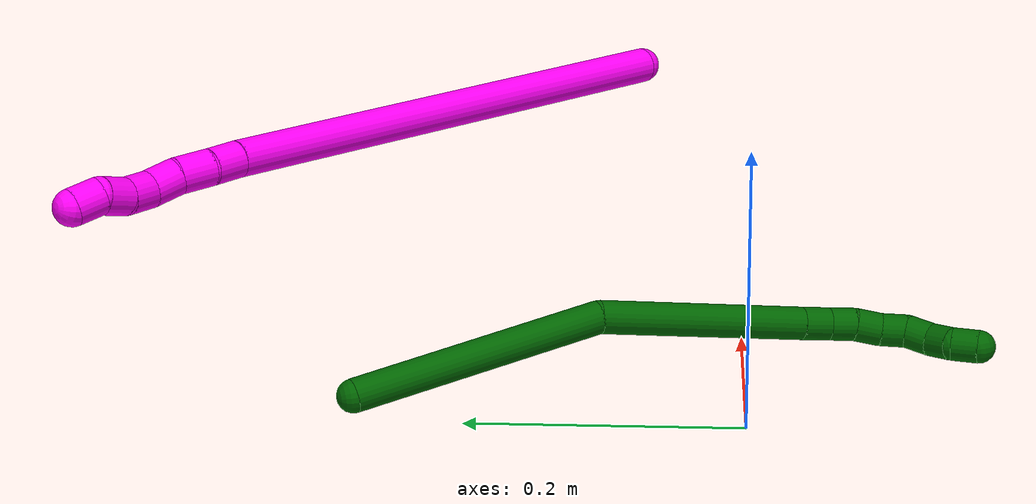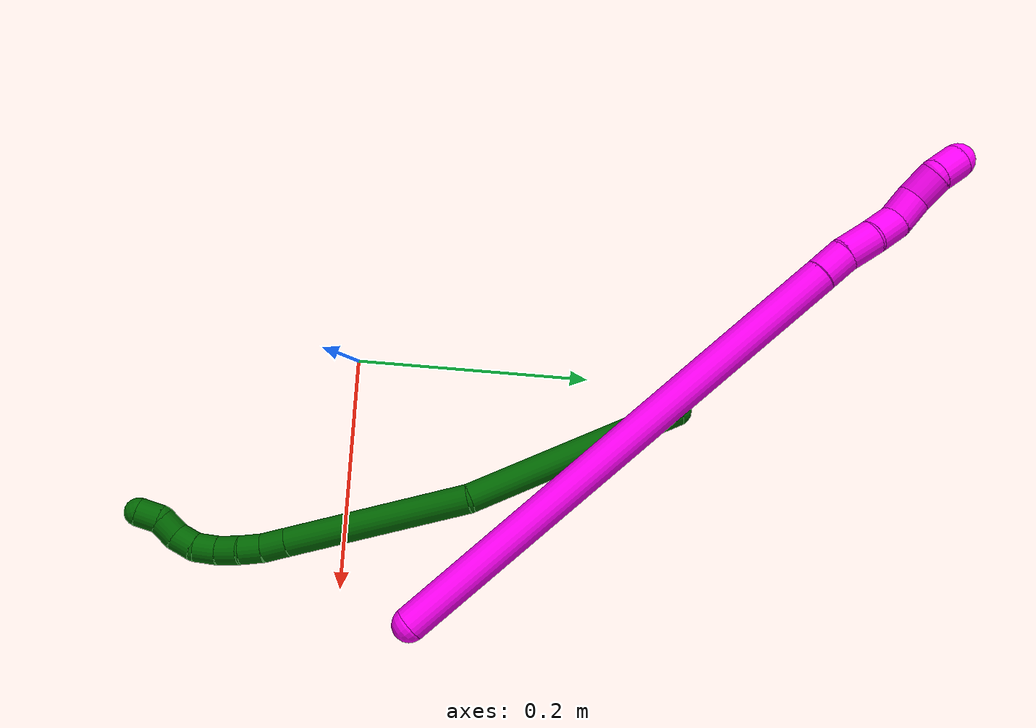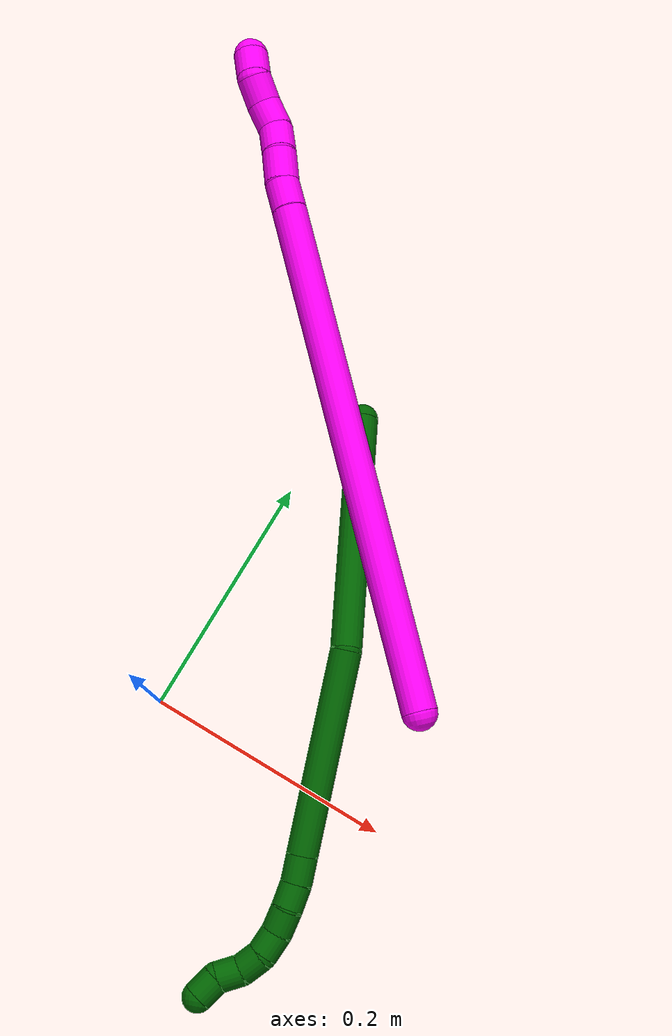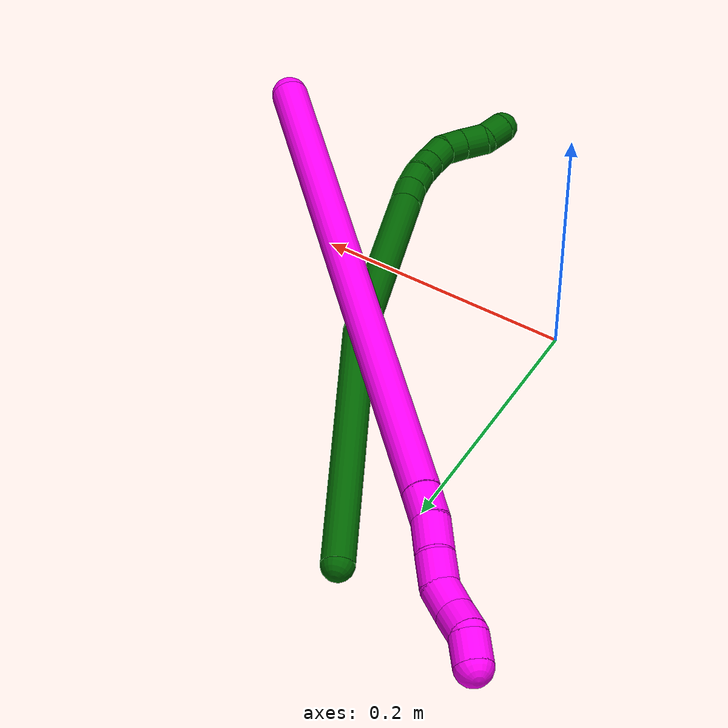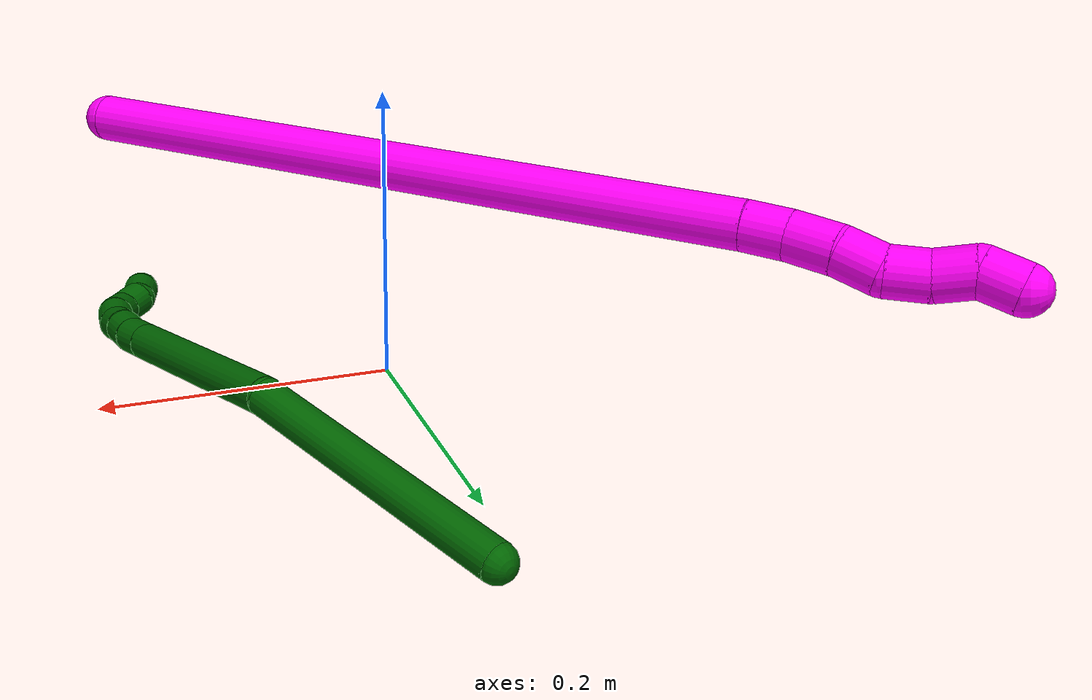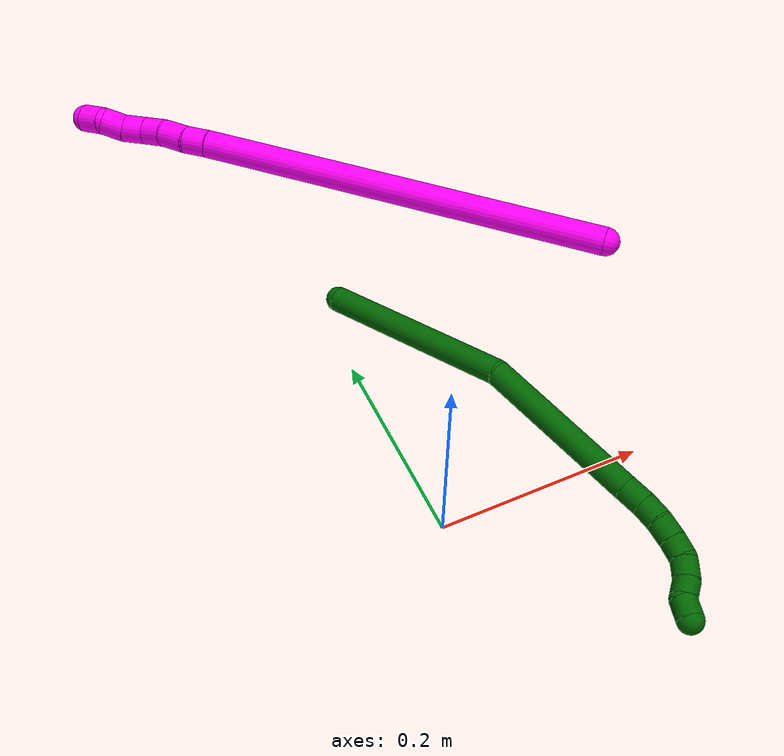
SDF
<sdf version="1.7">
 <world name="default">
  <model name="6">
   <static>0</static>
   <link name="6">
    <collision name="collision-cylinder-e_1_1_4">
     <pose>-0.010167 0.011104 -0.096827 -3.02741 -0.103946 1.47682</pose>
     <geometry><cylinder><radius>0.0125</radius><length>0.19598</length></cylinder></geometry>
     <surface>
      <friction><ode><mu>1.16</mu><mu2>1.16</mu2><slip1>0</slip1><slip2>0</slip2></ode></friction>
      <contact><ode><kp>1e+06</kp><kd>1</kd><max_vel>0</max_vel><min_depth>0.001</min_depth></ode></contact>
     </surface>
    </collision>
    <visual name="visual-cylinder-e_1_1_4">
     <pose>-0.010167 0.011104 -0.096827 -3.02741 -0.103946 1.47682</pose>
     <geometry><cylinder><radius>0.0125</radius><length>0.19598</length></cylinder></geometry>
     <material><ambient>0 0.392157 0.003922 1</ambient></material>
    </visual>
    <collision name="collision-cylinder-e_2_4_5">
     <pose>-0.021925 0.006219 -0.272563 2.94168 -0.019751 -0.196303</pose>
     <geometry><cylinder><radius>0.0125</radius><length>0.161059</length></cylinder></geometry>
     <surface>
      <friction><ode><mu>1.16</mu><mu2>1.16</mu2><slip1>0</slip1><slip2>0</slip2></ode></friction>
      <contact><ode><kp>1e+06</kp><kd>1</kd><max_vel>0</max_vel><min_depth>0.001</min_depth></ode></contact>
     </surface>
    </collision>
    <visual name="visual-cylinder-e_2_4_5">
     <pose>-0.021925 0.006219 -0.272563 2.94168 -0.019751 -0.196303</pose>
     <geometry><cylinder><radius>0.0125</radius><length>0.161059</length></cylinder></geometry>
     <material><ambient>0 0.392157 0.003922 1</ambient></material>
    </visual>
    <collision name="collision-cylinder-e_3_5_6">
     <pose>-0.023767 -0.011882 -0.362399 2.95065 -0.022615 -0.23508</pose>
     <geometry><cylinder><radius>0.0125</radius><length>0.022261</length></cylinder></geometry>
     <surface>
      <friction><ode><mu>1.16</mu><mu2>1.16</mu2><slip1>0</slip1><slip2>0</slip2></ode></friction>
      <contact><ode><kp>1e+06</kp><kd>1</kd><max_vel>0</max_vel><min_depth>0.001</min_depth></ode></contact>
     </surface>
    </collision>
    <visual name="visual-cylinder-e_3_5_6">
     <pose>-0.023767 -0.011882 -0.362399 2.95065 -0.022615 -0.23508</pose>
     <geometry><cylinder><radius>0.0125</radius><length>0.022261</length></cylinder></geometry>
     <material><ambient>0 0.392157 0.003922 1</ambient></material>
    </visual>
    <collision name="collision-cylinder-e_4_6_7">
     <pose>-0.022703 -0.015654 -0.383102 2.97341 0.131893 1.32919</pose>
     <geometry><cylinder><radius>0.0125</radius><length>0.02001</length></cylinder></geometry>
     <surface>
      <friction><ode><mu>1.16</mu><mu2>1.16</mu2><slip1>0</slip1><slip2>0</slip2></ode></friction>
      <contact><ode><kp>1e+06</kp><kd>1</kd><max_vel>0</max_vel><min_depth>0.001</min_depth></ode></contact>
     </surface>
    </collision>
    <visual name="visual-cylinder-e_4_6_7">
     <pose>-0.022703 -0.015654 -0.383102 2.97341 0.131893 1.32919</pose>
     <geometry><cylinder><radius>0.0125</radius><length>0.02001</length></cylinder></geometry>
     <material><ambient>0 0.392157 0.003922 1</ambient></material>
    </visual>
    <collision name="collision-cylinder-e_5_7_8">
     <pose>-0.01986 -0.0208 -0.402473 2.79297 0.148587 0.799787</pose>
     <geometry><cylinder><radius>0.0125</radius><length>0.020641</length></cylinder></geometry>
     <surface>
      <friction><ode><mu>1.16</mu><mu2>1.16</mu2><slip1>0</slip1><slip2>0</slip2></ode></friction>
      <contact><ode><kp>1e+06</kp><kd>1</kd><max_vel>0</max_vel><min_depth>0.001</min_depth></ode></contact>
     </surface>
    </collision>
    <visual name="visual-cylinder-e_5_7_8">
     <pose>-0.01986 -0.0208 -0.402473 2.79297 0.148587 0.799787</pose>
     <geometry><cylinder><radius>0.0125</radius><length>0.020641</length></cylinder></geometry>
     <material><ambient>0 0.392157 0.003922 1</ambient></material>
    </visual>
    <collision name="collision-cylinder-e_6_8_9">
     <pose>-0.014685 -0.026009 -0.421232 2.95592 0.372737 2.22429</pose>
     <geometry><cylinder><radius>0.0125</radius><length>0.020028</length></cylinder></geometry>
     <surface>
      <friction><ode><mu>1.16</mu><mu2>1.16</mu2><slip1>0</slip1><slip2>0</slip2></ode></friction>
      <contact><ode><kp>1e+06</kp><kd>1</kd><max_vel>0</max_vel><min_depth>0.001</min_depth></ode></contact>
     </surface>
    </collision>
    <visual name="visual-cylinder-e_6_8_9">
     <pose>-0.014685 -0.026009 -0.421232 2.95592 0.372737 2.22429</pose>
     <geometry><cylinder><radius>0.0125</radius><length>0.020028</length></cylinder></geometry>
     <material><ambient>0 0.392157 0.003922 1</ambient></material>
    </visual>
    <collision name="collision-cylinder-e_7_9_10">
     <pose>-0.005051 -0.031534 -0.437448 2.64688 0.641847 1.84226</pose>
     <geometry><cylinder><radius>0.0125</radius><length>0.020002</length></cylinder></geometry>
     <surface>
      <friction><ode><mu>1.16</mu><mu2>1.16</mu2><slip1>0</slip1><slip2>0</slip2></ode></friction>
      <contact><ode><kp>1e+06</kp><kd>1</kd><max_vel>0</max_vel><min_depth>0.001</min_depth></ode></contact>
     </surface>
    </collision>
    <visual name="visual-cylinder-e_7_9_10">
     <pose>-0.005051 -0.031534 -0.437448 2.64688 0.641847 1.84226</pose>
     <geometry><cylinder><radius>0.0125</radius><length>0.020002</length></cylinder></geometry>
     <material><ambient>0 0.392157 0.003922 1</ambient></material>
    </visual>
    <collision name="collision-cylinder-e_8_10_11">
     <pose>0.009666 -0.036766 -0.449168 2.84472 1.06081 2.64227</pose>
     <geometry><cylinder><radius>0.0125</radius><length>0.020005</length></cylinder></geometry>
     <surface>
      <friction><ode><mu>1.16</mu><mu2>1.16</mu2><slip1>0</slip1><slip2>0</slip2></ode></friction>
      <contact><ode><kp>1e+06</kp><kd>1</kd><max_vel>0</max_vel><min_depth>0.001</min_depth></ode></contact>
     </surface>
    </collision>
    <visual name="visual-cylinder-e_8_10_11">
     <pose>0.009666 -0.036766 -0.449168 2.84472 1.06081 2.64227</pose>
     <geometry><cylinder><radius>0.0125</radius><length>0.020005</length></cylinder></geometry>
     <material><ambient>0 0.392157 0.003922 1</ambient></material>
    </visual>
    <collision name="collision-cylinder-e_9_11_2">
     <pose>0.023717 -0.040035 -0.46211 2.92257 0.560649 2.41199</pose>
     <geometry><cylinder><radius>0.0125</radius><length>0.020014</length></cylinder></geometry>
     <surface>
      <friction><ode><mu>1.16</mu><mu2>1.16</mu2><slip1>0</slip1><slip2>0</slip2></ode></friction>
      <contact><ode><kp>1e+06</kp><kd>1</kd><max_vel>0</max_vel><min_depth>0.001</min_depth></ode></contact>
     </surface>
    </collision>
    <visual name="visual-cylinder-e_9_11_2">
     <pose>0.023717 -0.040035 -0.46211 2.92257 0.560649 2.41199</pose>
     <geometry><cylinder><radius>0.0125</radius><length>0.020014</length></cylinder></geometry>
     <material><ambient>0 0.392157 0.003922 1</ambient></material>
    </visual>
    <collision name="collision-sphere-2">
     <pose>0.029038 -0.041877 -0.470382 0 -0 0</pose>
     <geometry><sphere><radius>0.0125</radius></sphere></geometry>
     <surface>
      <friction><ode><mu>1.16</mu><mu2>1.16</mu2><slip1>0</slip1><slip2>0</slip2></ode></friction>
      <contact><ode><kp>1e+06</kp><kd>1</kd><max_vel>0</max_vel><min_depth>0.001</min_depth></ode></contact>
     </surface>
    </collision>
    <visual name="visual-sphere-2">
     <pose>0.029038 -0.041877 -0.470382 0 -0 0</pose>
     <geometry><sphere><radius>0.0125</radius></sphere></geometry>
     <material><ambient>0 0.392157 0.003922 1</ambient></material>
    </visual>
    <collision name="collision-sphere-11">
     <pose>0.018396 -0.038194 -0.453837 0 -0 0</pose>
     <geometry><sphere><radius>0.0125</radius></sphere></geometry>
     <surface>
      <friction><ode><mu>1.16</mu><mu2>1.16</mu2><slip1>0</slip1><slip2>0</slip2></ode></friction>
      <contact><ode><kp>1e+06</kp><kd>1</kd><max_vel>0</max_vel><min_depth>0.001</min_depth></ode></contact>
     </surface>
    </collision>
    <visual name="visual-sphere-11">
     <pose>0.018396 -0.038194 -0.453837 0 -0 0</pose>
     <geometry><sphere><radius>0.0125</radius></sphere></geometry>
     <material><ambient>0 0.392157 0.003922 1</ambient></material>
    </visual>
    <collision name="collision-sphere-10">
     <pose>0.000936 -0.035337 -0.444498 0 -0 0</pose>
     <geometry><sphere><radius>0.0125</radius></sphere></geometry>
     <surface>
      <friction><ode><mu>1.16</mu><mu2>1.16</mu2><slip1>0</slip1><slip2>0</slip2></ode></friction>
      <contact><ode><kp>1e+06</kp><kd>1</kd><max_vel>0</max_vel><min_depth>0.001</min_depth></ode></contact>
     </surface>
    </collision>
    <visual name="visual-sphere-10">
     <pose>0.000936 -0.035337 -0.444498 0 -0 0</pose>
     <geometry><sphere><radius>0.0125</radius></sphere></geometry>
     <material><ambient>0 0.392157 0.003922 1</ambient></material>
    </visual>
    <collision name="collision-sphere-9">
     <pose>-0.011038 -0.02773 -0.430398 0 -0 0</pose>
     <geometry><sphere><radius>0.0125</radius></sphere></geometry>
     <surface>
      <friction><ode><mu>1.16</mu><mu2>1.16</mu2><slip1>0</slip1><slip2>0</slip2></ode></friction>
      <contact><ode><kp>1e+06</kp><kd>1</kd><max_vel>0</max_vel><min_depth>0.001</min_depth></ode></contact>
     </surface>
    </collision>
    <visual name="visual-sphere-9">
     <pose>-0.011038 -0.02773 -0.430398 0 -0 0</pose>
     <geometry><sphere><radius>0.0125</radius></sphere></geometry>
     <material><ambient>0 0.392157 0.003922 1</ambient></material>
    </visual>
    <collision name="collision-sphere-4">
     <pose>-0.020335 0.022208 -0.193653 0 -0 0</pose>
     <geometry><sphere><radius>0.0125</radius></sphere></geometry>
     <surface>
      <friction><ode><mu>1.16</mu><mu2>1.16</mu2><slip1>0</slip1><slip2>0</slip2></ode></friction>
      <contact><ode><kp>1e+06</kp><kd>1</kd><max_vel>0</max_vel><min_depth>0.001</min_depth></ode></contact>
     </surface>
    </collision>
    <visual name="visual-sphere-4">
     <pose>-0.020335 0.022208 -0.193653 0 -0 0</pose>
     <geometry><sphere><radius>0.0125</radius></sphere></geometry>
     <material><ambient>0 0.392157 0.003922 1</ambient></material>
    </visual>
    <collision name="collision-sphere-1">
     <geometry><sphere><radius>0.0125</radius></sphere></geometry>
     <surface>
      <friction><ode><mu>1.16</mu><mu2>1.16</mu2><slip1>0</slip1><slip2>0</slip2></ode></friction>
      <contact><ode><kp>1e+06</kp><kd>1</kd><max_vel>0</max_vel><min_depth>0.001</min_depth></ode></contact>
     </surface>
    </collision>
    <visual name="visual-sphere-1">
     <geometry><sphere><radius>0.0125</radius></sphere></geometry>
     <material><ambient>0 0.392157 0.003922 1</ambient></material>
    </visual>
    <collision name="collision-sphere-8">
     <pose>-0.018332 -0.024287 -0.412066 0 -0 0</pose>
     <geometry><sphere><radius>0.0125</radius></sphere></geometry>
     <surface>
      <friction><ode><mu>1.16</mu><mu2>1.16</mu2><slip1>0</slip1><slip2>0</slip2></ode></friction>
      <contact><ode><kp>1e+06</kp><kd>1</kd><max_vel>0</max_vel><min_depth>0.001</min_depth></ode></contact>
     </surface>
    </collision>
    <visual name="visual-sphere-8">
     <pose>-0.018332 -0.024287 -0.412066 0 -0 0</pose>
     <geometry><sphere><radius>0.0125</radius></sphere></geometry>
     <material><ambient>0 0.392157 0.003922 1</ambient></material>
    </visual>
    <collision name="collision-sphere-5">
     <pose>-0.023516 -0.00977 -0.351474 0 -0 0</pose>
     <geometry><sphere><radius>0.0125</radius></sphere></geometry>
     <surface>
      <friction><ode><mu>1.16</mu><mu2>1.16</mu2><slip1>0</slip1><slip2>0</slip2></ode></friction>
      <contact><ode><kp>1e+06</kp><kd>1</kd><max_vel>0</max_vel><min_depth>0.001</min_depth></ode></contact>
     </surface>
    </collision>
    <visual name="visual-sphere-5">
     <pose>-0.023516 -0.00977 -0.351474 0 -0 0</pose>
     <geometry><sphere><radius>0.0125</radius></sphere></geometry>
     <material><ambient>0 0.392157 0.003922 1</ambient></material>
    </visual>
    <collision name="collision-sphere-6">
     <pose>-0.024019 -0.013993 -0.373324 0 -0 0</pose>
     <geometry><sphere><radius>0.0125</radius></sphere></geometry>
     <surface>
      <friction><ode><mu>1.16</mu><mu2>1.16</mu2><slip1>0</slip1><slip2>0</slip2></ode></friction>
      <contact><ode><kp>1e+06</kp><kd>1</kd><max_vel>0</max_vel><min_depth>0.001</min_depth></ode></contact>
     </surface>
    </collision>
    <visual name="visual-sphere-6">
     <pose>-0.024019 -0.013993 -0.373324 0 -0 0</pose>
     <geometry><sphere><radius>0.0125</radius></sphere></geometry>
     <material><ambient>0 0.392157 0.003922 1</ambient></material>
    </visual>
    <collision name="collision-sphere-7">
     <pose>-0.021387 -0.017314 -0.392881 0 -0 0</pose>
     <geometry><sphere><radius>0.0125</radius></sphere></geometry>
     <surface>
      <friction><ode><mu>1.16</mu><mu2>1.16</mu2><slip1>0</slip1><slip2>0</slip2></ode></friction>
      <contact><ode><kp>1e+06</kp><kd>1</kd><max_vel>0</max_vel><min_depth>0.001</min_depth></ode></contact>
     </surface>
    </collision>
    <visual name="visual-sphere-7">
     <pose>-0.021387 -0.017314 -0.392881 0 -0 0</pose>
     <geometry><sphere><radius>0.0125</radius></sphere></geometry>
     <material><ambient>0 0.392157 0.003922 1</ambient></material>
    </visual>
    <inertial>
     <pose>-0.013288 -0.001035 -0.244672 0 -0 0</pose>
     <mass>0.5</mass>
     <inertia>
      <ixx>0.000975</ixx>
      <ixy>0</ixy>
      <ixz>0</ixz>
      <iyy>0.000171</iyy>
      <iyz>0</iyz>
      <izz>3.3e-05</izz>
     </inertia>
    </inertial>
   </link>
   <pose>0.020891 0.279267 0.012135 1.65056 -0.192957 -2.81155</pose>
  </model>
  <model name="10">
   <static>0</static>
   <link name="10">
    <collision name="collision-cylinder-e_1_1_4">
     <pose>-0.006736 0.030196 0.182711 -0.163788 -0.036356 0.002984</pose>
     <geometry><cylinder><radius>0.0125</radius><length>0.370625</length></cylinder></geometry>
     <surface>
      <friction><ode><mu>1.16</mu><mu2>1.16</mu2><slip1>0</slip1><slip2>0</slip2></ode></friction>
      <contact><ode><kp>1e+06</kp><kd>1</kd><max_vel>0</max_vel><min_depth>0.001</min_depth></ode></contact>
     </surface>
    </collision>
    <visual name="visual-cylinder-e_1_1_4">
     <pose>-0.006736 0.030196 0.182711 -0.163788 -0.036356 0.002984</pose>
     <geometry><cylinder><radius>0.0125</radius><length>0.370625</length></cylinder></geometry>
     <material><ambient>1 0 0.964706 1</ambient></material>
    </visual>
    <collision name="collision-cylinder-e_2_4_5">
     <pose>-0.013935 0.062755 0.376027 -0.21915 -0.042676 0.004696</pose>
     <geometry><cylinder><radius>0.0125</radius><length>0.021748</length></cylinder></geometry>
     <surface>
      <friction><ode><mu>1.16</mu><mu2>1.16</mu2><slip1>0</slip1><slip2>0</slip2></ode></friction>
      <contact><ode><kp>1e+06</kp><kd>1</kd><max_vel>0</max_vel><min_depth>0.001</min_depth></ode></contact>
     </surface>
    </collision>
    <visual name="visual-cylinder-e_2_4_5">
     <pose>-0.013935 0.062755 0.376027 -0.21915 -0.042676 0.004696</pose>
     <geometry><cylinder><radius>0.0125</radius><length>0.021748</length></cylinder></geometry>
     <material><ambient>1 0 0.964706 1</ambient></material>
    </visual>
    <collision name="collision-cylinder-e_3_5_6">
     <pose>-0.01311 0.068127 0.398304 -0.252436 0.106508 -0.013528</pose>
     <geometry><cylinder><radius>0.0125</radius><length>0.024246</length></cylinder></geometry>
     <surface>
      <friction><ode><mu>1.16</mu><mu2>1.16</mu2><slip1>0</slip1><slip2>0</slip2></ode></friction>
      <contact><ode><kp>1e+06</kp><kd>1</kd><max_vel>0</max_vel><min_depth>0.001</min_depth></ode></contact>
     </surface>
    </collision>
    <visual name="visual-cylinder-e_3_5_6">
     <pose>-0.01311 0.068127 0.398304 -0.252436 0.106508 -0.013528</pose>
     <geometry><cylinder><radius>0.0125</radius><length>0.024246</length></cylinder></geometry>
     <material><ambient>1 0 0.964706 1</ambient></material>
    </visual>
    <collision name="collision-cylinder-e_4_6_7">
     <pose>-0.011186 0.075425 0.419772 -0.412475 0.059369 -0.012424</pose>
     <geometry><cylinder><radius>0.0125</radius><length>0.021424</length></cylinder></geometry>
     <surface>
      <friction><ode><mu>1.16</mu><mu2>1.16</mu2><slip1>0</slip1><slip2>0</slip2></ode></friction>
      <contact><ode><kp>1e+06</kp><kd>1</kd><max_vel>0</max_vel><min_depth>0.001</min_depth></ode></contact>
     </surface>
    </collision>
    <visual name="visual-cylinder-e_4_6_7">
     <pose>-0.011186 0.075425 0.419772 -0.412475 0.059369 -0.012424</pose>
     <geometry><cylinder><radius>0.0125</radius><length>0.021424</length></cylinder></geometry>
     <material><ambient>1 0 0.964706 1</ambient></material>
    </visual>
    <collision name="collision-cylinder-e_5_7_8">
     <pose>-0.012802 0.081197 0.439766 -0.144699 -0.215125 0.015651</pose>
     <geometry><cylinder><radius>0.0125</radius><length>0.021096</length></cylinder></geometry>
     <surface>
      <friction><ode><mu>1.16</mu><mu2>1.16</mu2><slip1>0</slip1><slip2>0</slip2></ode></friction>
      <contact><ode><kp>1e+06</kp><kd>1</kd><max_vel>0</max_vel><min_depth>0.001</min_depth></ode></contact>
     </surface>
    </collision>
    <visual name="visual-cylinder-e_5_7_8">
     <pose>-0.012802 0.081197 0.439766 -0.144699 -0.215125 0.015651</pose>
     <geometry><cylinder><radius>0.0125</radius><length>0.021096</length></cylinder></geometry>
     <material><ambient>1 0 0.964706 1</ambient></material>
    </visual>
    <collision name="collision-cylinder-e_6_8_9">
     <pose>-0.016511 0.081657 0.46017 0.100156 -0.14106 -0.007082</pose>
     <geometry><cylinder><radius>0.0125</radius><length>0.020724</length></cylinder></geometry>
     <surface>
      <friction><ode><mu>1.16</mu><mu2>1.16</mu2><slip1>0</slip1><slip2>0</slip2></ode></friction>
      <contact><ode><kp>1e+06</kp><kd>1</kd><max_vel>0</max_vel><min_depth>0.001</min_depth></ode></contact>
     </surface>
    </collision>
    <visual name="visual-cylinder-e_6_8_9">
     <pose>-0.016511 0.081657 0.46017 0.100156 -0.14106 -0.007082</pose>
     <geometry><cylinder><radius>0.0125</radius><length>0.020724</length></cylinder></geometry>
     <material><ambient>1 0 0.964706 1</ambient></material>
    </visual>
    <collision name="collision-cylinder-e_7_9_2">
     <pose>-0.017379 0.084315 0.479731 -0.375136 0.058514 -0.011109</pose>
     <geometry><cylinder><radius>0.0125</radius><length>0.020137</length></cylinder></geometry>
     <surface>
      <friction><ode><mu>1.16</mu><mu2>1.16</mu2><slip1>0</slip1><slip2>0</slip2></ode></friction>
      <contact><ode><kp>1e+06</kp><kd>1</kd><max_vel>0</max_vel><min_depth>0.001</min_depth></ode></contact>
     </surface>
    </collision>
    <visual name="visual-cylinder-e_7_9_2">
     <pose>-0.017379 0.084315 0.479731 -0.375136 0.058514 -0.011109</pose>
     <geometry><cylinder><radius>0.0125</radius><length>0.020137</length></cylinder></geometry>
     <material><ambient>1 0 0.964706 1</ambient></material>
    </visual>
    <collision name="collision-sphere-2">
     <pose>-0.01679 0.087997 0.489083 0 -0 0</pose>
     <geometry><sphere><radius>0.0125</radius></sphere></geometry>
     <surface>
      <friction><ode><mu>1.16</mu><mu2>1.16</mu2><slip1>0</slip1><slip2>0</slip2></ode></friction>
      <contact><ode><kp>1e+06</kp><kd>1</kd><max_vel>0</max_vel><min_depth>0.001</min_depth></ode></contact>
     </surface>
    </collision>
    <visual name="visual-sphere-2">
     <pose>-0.01679 0.087997 0.489083 0 -0 0</pose>
     <geometry><sphere><radius>0.0125</radius></sphere></geometry>
     <material><ambient>1 0 0.964706 1</ambient></material>
    </visual>
    <collision name="collision-sphere-9">
     <pose>-0.017967 0.080632 0.470378 0 -0 0</pose>
     <geometry><sphere><radius>0.0125</radius></sphere></geometry>
     <surface>
      <friction><ode><mu>1.16</mu><mu2>1.16</mu2><slip1>0</slip1><slip2>0</slip2></ode></friction>
      <contact><ode><kp>1e+06</kp><kd>1</kd><max_vel>0</max_vel><min_depth>0.001</min_depth></ode></contact>
     </surface>
    </collision>
    <visual name="visual-sphere-9">
     <pose>-0.017967 0.080632 0.470378 0 -0 0</pose>
     <geometry><sphere><radius>0.0125</radius></sphere></geometry>
     <material><ambient>1 0 0.964706 1</ambient></material>
    </visual>
    <collision name="collision-sphere-4">
     <pose>-0.013471 0.060393 0.365423 0 -0 0</pose>
     <geometry><sphere><radius>0.0125</radius></sphere></geometry>
     <surface>
      <friction><ode><mu>1.16</mu><mu2>1.16</mu2><slip1>0</slip1><slip2>0</slip2></ode></friction>
      <contact><ode><kp>1e+06</kp><kd>1</kd><max_vel>0</max_vel><min_depth>0.001</min_depth></ode></contact>
     </surface>
    </collision>
    <visual name="visual-sphere-4">
     <pose>-0.013471 0.060393 0.365423 0 -0 0</pose>
     <geometry><sphere><radius>0.0125</radius></sphere></geometry>
     <material><ambient>1 0 0.964706 1</ambient></material>
    </visual>
    <collision name="collision-sphere-1">
     <geometry><sphere><radius>0.0125</radius></sphere></geometry>
     <surface>
      <friction><ode><mu>1.16</mu><mu2>1.16</mu2><slip1>0</slip1><slip2>0</slip2></ode></friction>
      <contact><ode><kp>1e+06</kp><kd>1</kd><max_vel>0</max_vel><min_depth>0.001</min_depth></ode></contact>
     </surface>
    </collision>
    <visual name="visual-sphere-1">
     <geometry><sphere><radius>0.0125</radius></sphere></geometry>
     <material><ambient>1 0 0.964706 1</ambient></material>
    </visual>
    <collision name="collision-sphere-8">
     <pose>-0.015054 0.082683 0.449963 0 -0 0</pose>
     <geometry><sphere><radius>0.0125</radius></sphere></geometry>
     <surface>
      <friction><ode><mu>1.16</mu><mu2>1.16</mu2><slip1>0</slip1><slip2>0</slip2></ode></friction>
      <contact><ode><kp>1e+06</kp><kd>1</kd><max_vel>0</max_vel><min_depth>0.001</min_depth></ode></contact>
     </surface>
    </collision>
    <visual name="visual-sphere-8">
     <pose>-0.015054 0.082683 0.449963 0 -0 0</pose>
     <geometry><sphere><radius>0.0125</radius></sphere></geometry>
     <material><ambient>1 0 0.964706 1</ambient></material>
    </visual>
    <collision name="collision-sphere-5">
     <pose>-0.014399 0.065117 0.386631 0 -0 0</pose>
     <geometry><sphere><radius>0.0125</radius></sphere></geometry>
     <surface>
      <friction><ode><mu>1.16</mu><mu2>1.16</mu2><slip1>0</slip1><slip2>0</slip2></ode></friction>
      <contact><ode><kp>1e+06</kp><kd>1</kd><max_vel>0</max_vel><min_depth>0.001</min_depth></ode></contact>
     </surface>
    </collision>
    <visual name="visual-sphere-5">
     <pose>-0.014399 0.065117 0.386631 0 -0 0</pose>
     <geometry><sphere><radius>0.0125</radius></sphere></geometry>
     <material><ambient>1 0 0.964706 1</ambient></material>
    </visual>
    <collision name="collision-sphere-6">
     <pose>-0.011822 0.071138 0.409976 0 -0 0</pose>
     <geometry><sphere><radius>0.0125</radius></sphere></geometry>
     <surface>
      <friction><ode><mu>1.16</mu><mu2>1.16</mu2><slip1>0</slip1><slip2>0</slip2></ode></friction>
      <contact><ode><kp>1e+06</kp><kd>1</kd><max_vel>0</max_vel><min_depth>0.001</min_depth></ode></contact>
     </surface>
    </collision>
    <visual name="visual-sphere-6">
     <pose>-0.011822 0.071138 0.409976 0 -0 0</pose>
     <geometry><sphere><radius>0.0125</radius></sphere></geometry>
     <material><ambient>1 0 0.964706 1</ambient></material>
    </visual>
    <collision name="collision-sphere-7">
     <pose>-0.010551 0.079712 0.429569 0 -0 0</pose>
     <geometry><sphere><radius>0.0125</radius></sphere></geometry>
     <surface>
      <friction><ode><mu>1.16</mu><mu2>1.16</mu2><slip1>0</slip1><slip2>0</slip2></ode></friction>
      <contact><ode><kp>1e+06</kp><kd>1</kd><max_vel>0</max_vel><min_depth>0.001</min_depth></ode></contact>
     </surface>
    </collision>
    <visual name="visual-sphere-7">
     <pose>-0.010551 0.079712 0.429569 0 -0 0</pose>
     <geometry><sphere><radius>0.0125</radius></sphere></geometry>
     <material><ambient>1 0 0.964706 1</ambient></material>
    </visual>
    <inertial>
     <pose>-0.008638 0.041854 0.24604 0 -0 0</pose>
     <mass>0.5</mass>
     <inertia>
      <ixx>0.004276</ixx>
      <ixy>0</ixy>
      <ixz>0</ixz>
      <iyy>0.004229</iyy>
      <iyz>0</iyz>
      <izz>-0.000503</izz>
     </inertia>
    </inertial>
   </link>
   <pose>0.184549 0.078029 0.218439 -1.42422 -0.045115 0.750324</pose>
  </model>
 </world>
</sdf>
